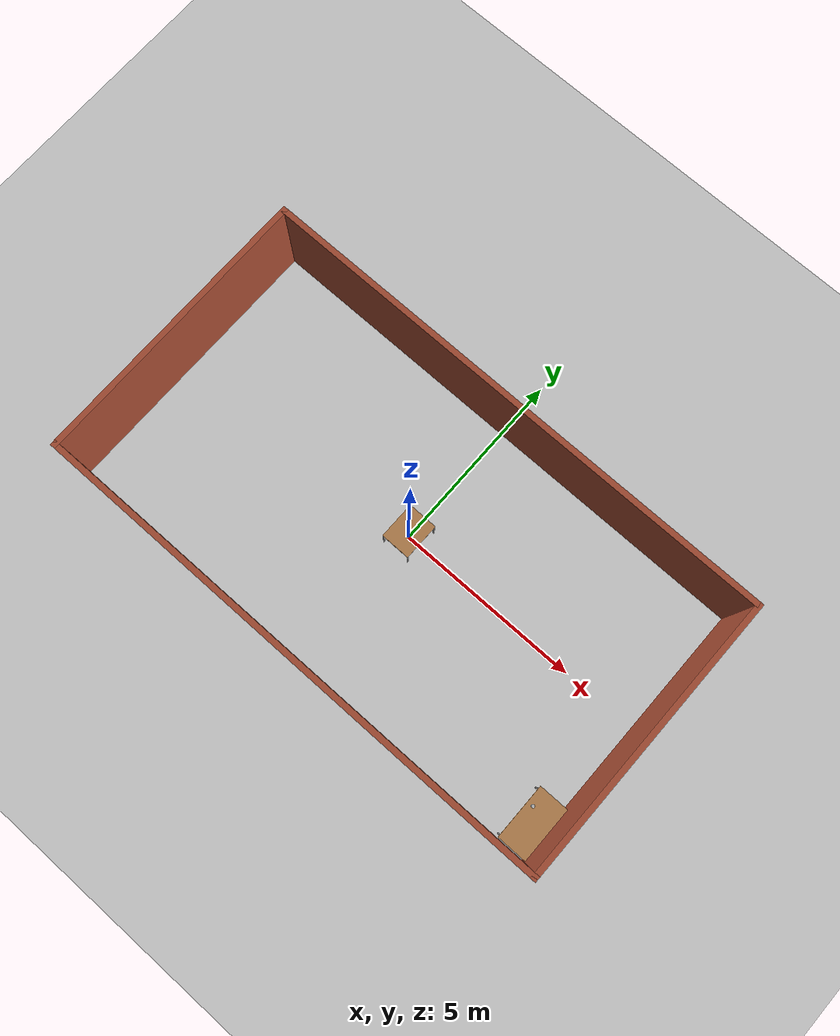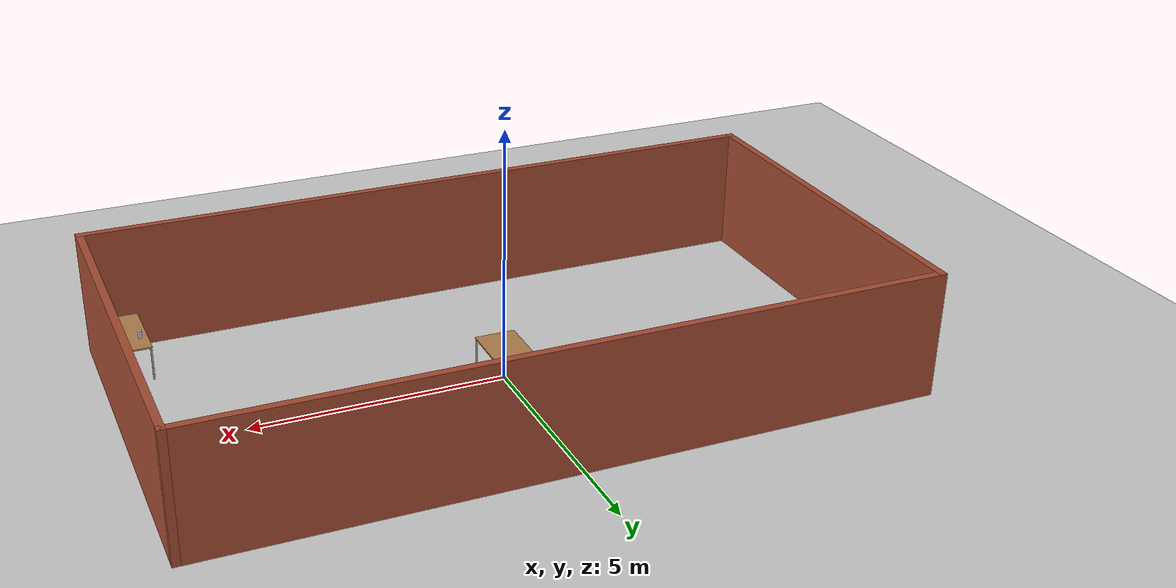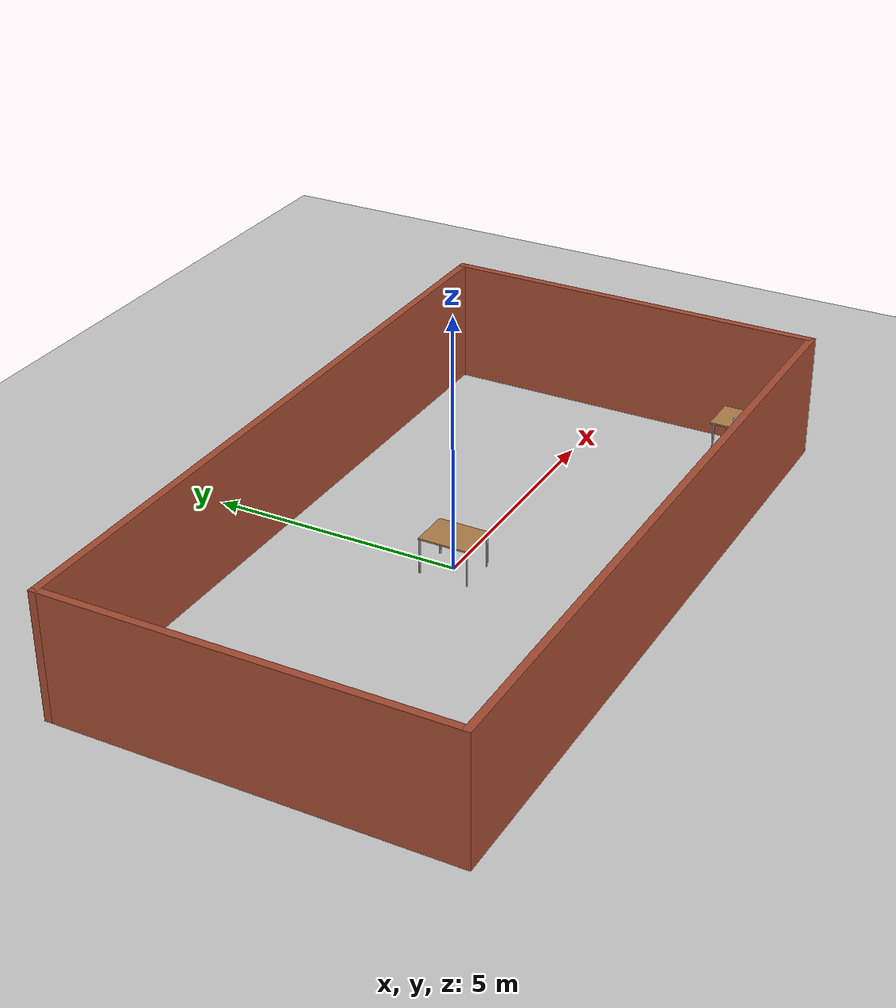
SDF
<sdf version="1.7">
 <world name="default">
  <physics type="ode">
   <ode>
    <solver>
     <type>quick</type>
     <iters>50</iters>
     <sor>1.4</sor>
     <use_dynamic_moi_rescaling>0</use_dynamic_moi_rescaling>
    </solver>
    <constraints>
     <cfm>0</cfm>
     <erp>0.2</erp>
     <contact_max_correcting_vel>100</contact_max_correcting_vel>
     <contact_surface_layer>0</contact_surface_layer>
    </constraints>
   </ode>
   <real_time_update_rate>1000</real_time_update_rate>
   <max_step_size>0.001</max_step_size>
   <real_time_factor>1</real_time_factor>
  </physics>
  <light name="sun" type="directional">
   <pose>0 0 10 0 -0 0</pose>
   <diffuse>0.8 0.8 0.8 1</diffuse>
   <specular>0.2 0.2 0.2 1</specular>
   <attenuation>
    <range>1000</range>
    <constant>0.9</constant>
    <linear>0.01</linear>
    <quadratic>0.001</quadratic>
   </attenuation>
   <direction>-0.5 0.1 -0.9</direction>
   <spot><inner_angle>0</inner_angle><outer_angle>0</outer_angle><falloff>0</falloff></spot>
  </light>
  <model name="ground_plane">
   <static>1</static>
   <link name="link">
    <collision name="collision">
     <geometry><plane><normal>0 0 1</normal><size>100 100</size></plane></geometry>
     <surface><friction><ode><mu>100</mu><mu2>50</mu2></ode></friction></surface>
    </collision>
    <visual name="visual">
     <cast_shadows>0</cast_shadows>
     <geometry><plane><normal>0 0 1</normal><size>100 100</size></plane></geometry>
     <material>
      <script><uri>file://media/materials/scripts/gazebo.material</uri><name>Gazebo/Grey</name></script>
     </material>
    </visual>
   </link>
  </model>
  <gravity>0 0 -9.81</gravity>
  <magnetic_field>6e-06 2.3e-05 -4.2e-05</magnetic_field>
  <atmosphere type="adiabatic"/>
  <scene><ambient>0.4 0.4 0.4 1</ambient><background>0.7 0.7 0.7 1</background><shadows>1</shadows></scene>
  <audio><device>default</device></audio>
  <spherical_coordinates>
   <surface_model>EARTH_WGS84</surface_model>
   <latitude_deg>0</latitude_deg>
   <longitude_deg>0</longitude_deg>
   <elevation>0</elevation>
   <heading_deg>0</heading_deg>
  </spherical_coordinates>
  <model name="room">
   <link name="Wall_0">
    <collision name="Wall_0_Collision">
     <geometry><box><size>7.75 0.15 2.5</size></box></geometry>
     <pose>0 0 1.25 0 -0 0</pose>
    </collision>
    <visual name="Wall_0_Visual">
     <pose>0 0 1.25 0 -0 0</pose>
     <geometry><box><size>7.75 0.15 2.5</size></box></geometry>
     <material>
      <script><uri>file://media/materials/scripts/gazebo.material</uri><name>Gazebo/Bricks</name></script>
      <ambient>1 1 1 1</ambient>
     </material>
     <meta><layer>0</layer></meta>
    </visual>
    <pose>-7.05 -0.247499 0 0 -0 -1.5708</pose>
   </link>
   <link name="Wall_1">
    <collision name="Wall_1_Collision">
     <geometry><box><size>14.25 0.15 2.5</size></box></geometry>
     <pose>0 0 1.25 0 -0 0</pose>
    </collision>
    <visual name="Wall_1_Visual">
     <pose>0 0 1.25 0 -0 0</pose>
     <geometry><box><size>14.25 0.15 2.5</size></box></geometry>
     <material>
      <script><uri>file://media/materials/scripts/gazebo.material</uri><name>Gazebo/Bricks</name></script>
      <ambient>1 1 1 1</ambient>
     </material>
     <meta><layer>0</layer></meta>
    </visual>
    <pose>0 -4.0475 0 0 -0 0</pose>
   </link>
   <link name="Wall_2">
    <collision name="Wall_2_Collision">
     <geometry><box><size>7.75 0.15 2.5</size></box></geometry>
     <pose>0 0 1.25 0 -0 0</pose>
    </collision>
    <visual name="Wall_2_Visual">
     <pose>0 0 1.25 0 -0 0</pose>
     <geometry><box><size>7.75 0.15 2.5</size></box></geometry>
     <material>
      <script><uri>file://media/materials/scripts/gazebo.material</uri><name>Gazebo/Bricks</name></script>
      <ambient>1 1 1 1</ambient>
     </material>
     <meta><layer>0</layer></meta>
    </visual>
    <pose>7.05 -0.247499 0 0 -0 1.5708</pose>
   </link>
   <link name="Wall_3">
    <collision name="Wall_3_Collision">
     <geometry><box><size>14.25 0.15 2.5</size></box></geometry>
     <pose>0 0 1.25 0 -0 0</pose>
    </collision>
    <visual name="Wall_3_Visual">
     <pose>0 0 1.25 0 -0 0</pose>
     <geometry><box><size>14.25 0.15 2.5</size></box></geometry>
     <material>
      <script><uri>file://media/materials/scripts/gazebo.material</uri><name>Gazebo/Bricks</name></script>
      <ambient>1 1 1 1</ambient>
     </material>
     <meta><layer>0</layer></meta>
    </visual>
    <pose>0 3.5525 0 0 -0 3.14159</pose>
   </link>
   <static>1</static>
  </model>
  <model name="table_0">
   <static>1</static>
   <link name="link">
    <collision name="surface">
     <pose>0 0 0.8 0 -0 0</pose>
     <geometry><box><size>1 0.8 0.03</size></box></geometry>
    </collision>
    <visual name="visual1">
     <pose>0 0 0.8 0 -0 0</pose>
     <geometry><box><size>1 0.8 0.03</size></box></geometry>
     <material>
      <script><uri>file://media/materials/scripts/gazebo.material</uri><name>Gazebo/Wood</name></script>
     </material>
    </visual>
    <collision name="front_left_leg">
     <pose>0.48 0.38 0.4 0 -0 0</pose>
     <geometry><cylinder><radius>0.02</radius><length>0.8</length></cylinder></geometry>
    </collision>
    <visual name="front_left_leg">
     <pose>0.48 0.38 0.4 0 -0 0</pose>
     <geometry><cylinder><radius>0.02</radius><length>0.8</length></cylinder></geometry>
     <material>
      <script><uri>file://media/materials/scripts/gazebo.material</uri><name>Gazebo/Grey</name></script>
     </material>
    </visual>
    <collision name="front_right_leg">
     <pose>0.48 -0.38 0.4 0 -0 0</pose>
     <geometry><cylinder><radius>0.02</radius><length>0.8</length></cylinder></geometry>
    </collision>
    <visual name="front_right_leg">
     <pose>0.48 -0.38 0.4 0 -0 0</pose>
     <geometry><cylinder><radius>0.02</radius><length>0.8</length></cylinder></geometry>
     <material>
      <script><uri>file://media/materials/scripts/gazebo.material</uri><name>Gazebo/Grey</name></script>
     </material>
    </visual>
    <collision name="back_right_leg">
     <pose>-0.48 -0.38 0.4 0 -0 0</pose>
     <geometry><cylinder><radius>0.02</radius><length>0.8</length></cylinder></geometry>
    </collision>
    <visual name="back_right_leg">
     <pose>-0.48 -0.38 0.4 0 -0 0</pose>
     <geometry><cylinder><radius>0.02</radius><length>0.8</length></cylinder></geometry>
     <material>
      <script><uri>file://media/materials/scripts/gazebo.material</uri><name>Gazebo/Grey</name></script>
     </material>
    </visual>
    <collision name="back_left_leg">
     <pose>-0.48 0.38 0.4 0 -0 0</pose>
     <geometry><cylinder><radius>0.02</radius><length>0.8</length></cylinder></geometry>
    </collision>
    <visual name="back_left_leg">
     <pose>-0.48 0.38 0.4 0 -0 0</pose>
     <geometry><cylinder><radius>0.02</radius><length>0.8</length></cylinder></geometry>
     <material>
      <script><uri>file://media/materials/scripts/gazebo.material</uri><name>Gazebo/Grey</name></script>
     </material>
    </visual>
    <velocity_decay><linear>0</linear><angular>0</angular></velocity_decay>
   </link>
   <pose>0.001563 0.004173 -0.106677 0 0 -1.57503</pose>
  </model>
  <plugin name="gazebo_ros_state" filename="libgazebo_ros_state.so"><update_rate>30</update_rate></plugin>
  <model name="table">
   <static>1</static>
   <link name="link">
    <collision name="surface">
     <pose>0 0 1 0 -0 0</pose>
     <geometry><box><size>1.5 0.8 0.03</size></box></geometry>
     <surface><friction><ode><mu>0.6</mu><mu2>0.6</mu2></ode></friction></surface>
    </collision>
    <visual name="visual1">
     <pose>0 0 1 0 -0 0</pose>
     <geometry><box><size>1.5 0.8 0.03</size></box></geometry>
     <material>
      <script><uri>file://media/materials/scripts/gazebo.material</uri><name>Gazebo/Wood</name></script>
     </material>
    </visual>
    <collision name="front_left_leg">
     <pose>0.68 0.38 0.5 0 -0 0</pose>
     <geometry><cylinder><radius>0.02</radius><length>1</length></cylinder></geometry>
    </collision>
    <visual name="front_left_leg">
     <pose>0.68 0.38 0.5 0 -0 0</pose>
     <geometry><cylinder><radius>0.02</radius><length>1</length></cylinder></geometry>
     <material>
      <script><uri>file://media/materials/scripts/gazebo.material</uri><name>Gazebo/Grey</name></script>
     </material>
    </visual>
    <collision name="front_right_leg">
     <pose>0.68 -0.38 0.5 0 -0 0</pose>
     <geometry><cylinder><radius>0.02</radius><length>1</length></cylinder></geometry>
    </collision>
    <visual name="front_right_leg">
     <pose>0.68 -0.38 0.5 0 -0 0</pose>
     <geometry><cylinder><radius>0.02</radius><length>1</length></cylinder></geometry>
     <material>
      <script><uri>file://media/materials/scripts/gazebo.material</uri><name>Gazebo/Grey</name></script>
     </material>
    </visual>
    <collision name="back_right_leg">
     <pose>-0.68 -0.38 0.5 0 -0 0</pose>
     <geometry><cylinder><radius>0.02</radius><length>1</length></cylinder></geometry>
    </collision>
    <visual name="back_right_leg">
     <pose>-0.68 -0.38 0.5 0 -0 0</pose>
     <geometry><cylinder><radius>0.02</radius><length>1</length></cylinder></geometry>
     <material>
      <script><uri>file://media/materials/scripts/gazebo.material</uri><name>Gazebo/Grey</name></script>
     </material>
    </visual>
    <collision name="back_left_leg">
     <pose>-0.68 0.38 0.5 0 -0 0</pose>
     <geometry><cylinder><radius>0.02</radius><length>1</length></cylinder></geometry>
    </collision>
    <visual name="back_left_leg">
     <pose>-0.68 0.38 0.5 0 -0 0</pose>
     <geometry><cylinder><radius>0.02</radius><length>1</length></cylinder></geometry>
     <material>
      <script><uri>file://media/materials/scripts/gazebo.material</uri><name>Gazebo/Grey</name></script>
     </material>
    </visual>
   </link>
   <pose>6.5532 -3.1957 -0.307595 0 0 -1.56889</pose>
  </model>
  <model name="cocacola">
   <static>0</static>
   <link name="link">
    <inertial>
     <mass>0.25</mass>
     <inertia><ixx>0</ixx><ixy>0</ixy><ixz>0</ixz><iyy>0</iyy><iyz>0</iyz><izz>0</izz></inertia>
    </inertial>
    <collision name="collision">
     <pose>0 0 0.075 -3.14159 -0 0</pose>
     <geometry><cylinder><radius>0.04</radius><length>0.15</length></cylinder></geometry>
    </collision>
    <visual name="visual">
     <pose>0 0 0.075 -3.14159 -0 0</pose>
     <geometry><cylinder><radius>0.04</radius><length>0.15</length></cylinder></geometry>
     <material>
      <script>
       <uri>model://cocacola/material/scripts</uri>
       <uri>model://cocacola/material/textures</uri>
       <name>Custom/cocacola</name>
      </script>
     </material>
    </visual>
    <velocity_decay><linear>0</linear><angular>0</angular></velocity_decay>
   </link>
   <pose>6.29671 -2.90749 0.707406 -7e-06 -3.6e-05 6.7e-05</pose>
  </model>
  <plugin name="gazebo_link_attacher" filename="libgazebo_link_attacher.so"/>
 </world>
</sdf>
